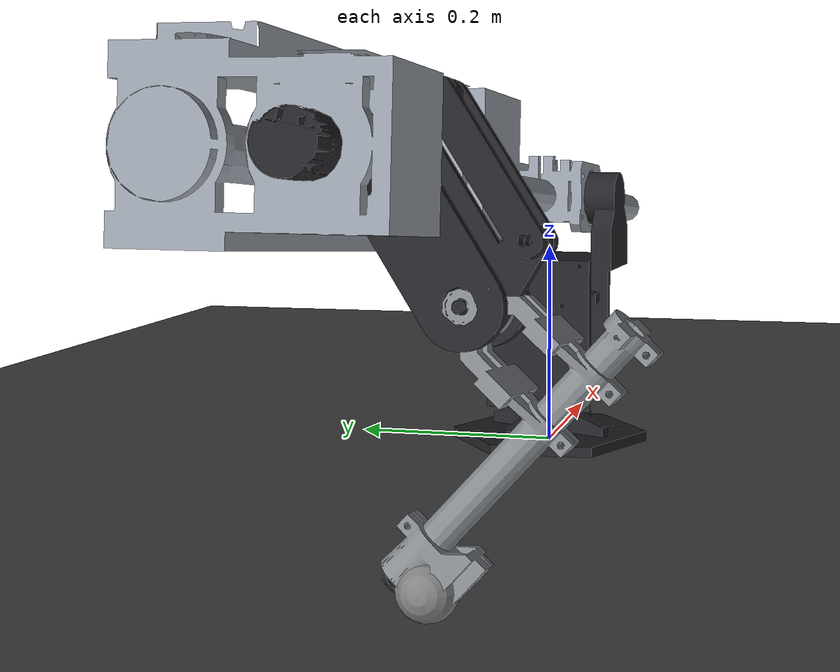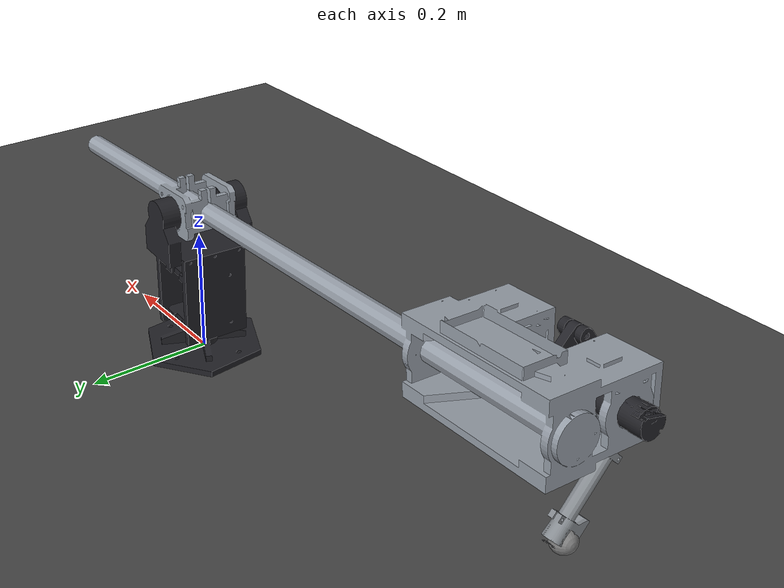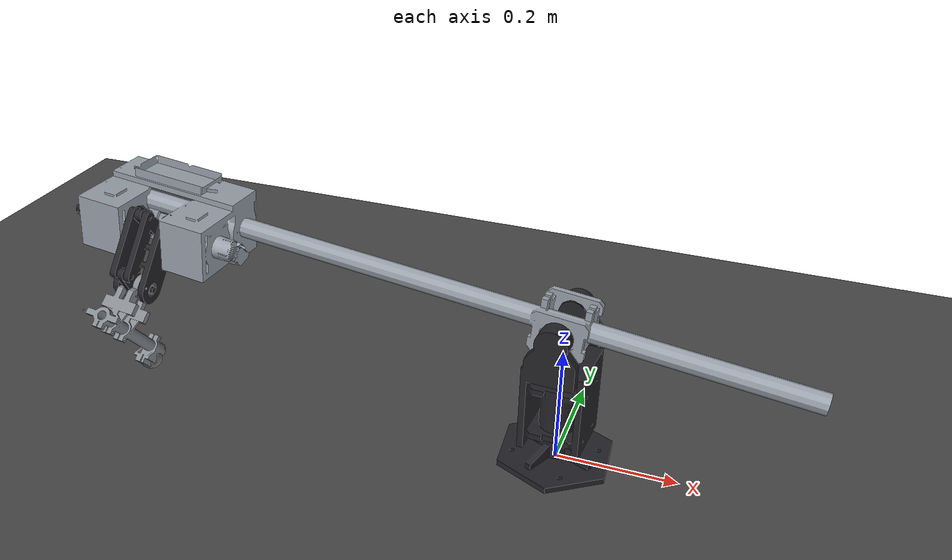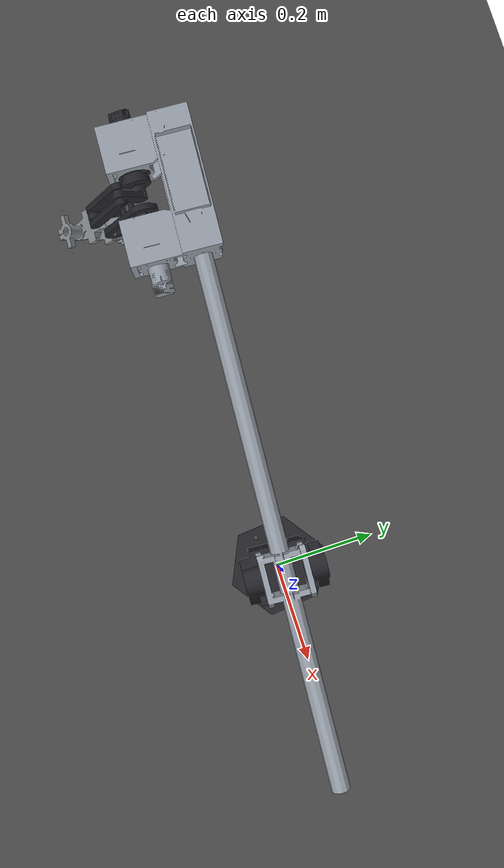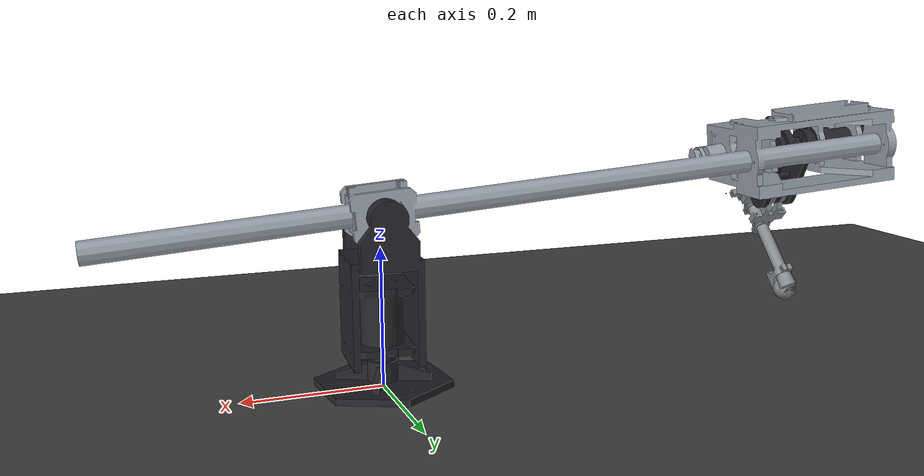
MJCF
<mujoco model="HOPPY-E0-final">
  <compiler angle="radian" autolimits="true" meshdir="meshes"/>
  <option timestep="0.001" gravity="0 0 -9.81" integrator="RK4"
          solver="Newton" iterations="50" tolerance="1e-8"/>
  <default>
    <geom condim="3" friction="0.8 0.005 0.0001"
          solref="0.005 1" solimp="0.98 0.999 0.001 0.5 2"/>
    <joint damping="0.02"/>
  </default>

  <asset>
    <mesh name="base_urdf" file="base_urdf.stl"/>
    <mesh name="link1_urdf" file="link1_urdf.stl"/>
    <mesh name="link2_urdf" file="link2_urdf.stl"/>
    <mesh name="link3_urdf" file="link3_urdf.stl"/>
    <mesh name="link4_urdf" file="link4_urdf.stl"/>

    <!-- Floor texture -->
    <texture name="grid" type="2d" builtin="checker"
             rgb1="0.38 0.38 0.38" rgb2="0.18 0.18 0.18" width="512" height="512"/>
    <material name="floor_mat" texture="grid" texrepeat="5 5" reflectance="0.04"/>
    <!-- Robot materials by link (matching real robot colors from photos) -->
    <material name="base_mat"  rgba="0.14 0.14 0.16 1"/>  <!-- dark anodized -->
    <material name="link1_mat" rgba="0.14 0.14 0.16 1"/>  <!-- dark column -->
    <material name="link2_mat" rgba="0.60 0.63 0.67 1"/>  <!-- silver boom -->
    <material name="link3_mat" rgba="0.14 0.14 0.16 1"/>  <!-- dark hip -->
    <material name="link4_mat" rgba="0.52 0.54 0.56 1"/>  <!-- carbon shank -->
    <material name="foot_mat"  rgba="0.80 0.08 0.08 1"/>  <!-- red foot -->
  </asset>

  <worldbody>
    <light name="sun"  pos="2 -1 4"  dir="-0.4 0.2 -0.9" diffuse="0.85 0.85 0.85" specular="0.4 0.4 0.4"/>
    <light name="fill" pos="-3 3 2"  dir="0.6 -0.5 -0.6" diffuse="0.30 0.30 0.35"/>
    <geom name="floor" type="plane" size="5 5 0.1" material="floor_mat"
          friction="0.8 0.005 0.0001" condim="3"/>
    <geom type="mesh" material="base_mat" mesh="base_urdf"/>
    <body name="Link1" pos="0 0 0.04">
      <inertial pos="1.19035e-06 -7.23296e-08 0.110977" quat="0.999539 -3.72317e-07 -1.22626e-05 -0.0303481" mass="1.05189" diaginertia="0.0015755 0.00119525 0.000930447"/>
      <joint name="joint1" pos="0 0 0" axis="0 0 1" range="-3.14 3.14" actuatorfrcrange="-10 10"/>
      <geom type="mesh" material="link1_mat" mesh="link1_urdf"/>
      <body name="Link2" pos="-0.00227444 -0.037431 0.21" quat="0.705252 0.707058 0.00831865 -0.0511876">
        <inertial pos="-0.513966 0.0016327 -0.00902703" quat="0.500001 0.500001 0.499999 0.499999" mass="1.87654" diaginertia="0.0636508 0.0630427 0.00259304"/>
        <joint name="joint2" pos="0 0 0" axis="0 0 1" range="-0.5 0.5" actuatorfrcrange="-10 10"/>
        <geom type="mesh" material="link2_mat" mesh="link2_urdf"/>
        <body name="Link3" pos="-0.6585 0 0.0425" quat="0.677009 -0.204104 -0.677009 0.204104">
          <inertial pos="0.00864428 -0.0327981 0.0561207" quat="0.511267 0.498647 -0.497438 0.492456" mass="0.332207" diaginertia="0.000345397 0.000299821 7.12146e-05"/>
          <joint name="joint3" pos="0 0 0" axis="0 0 1" range="-0.5 0.9" actuatorfrcrange="-10 10"/>
          <geom type="mesh" material="link3_mat" mesh="link3_urdf"/>
          <body name="Link4" pos="0 -0.1 0.0095" quat="0 -0.288647 -0.957436 0">
            <inertial pos="-0.0162703 -0.0747425 -0.0260399" quat="0.285014 0.647037 -0.285746 0.646884" mass="0.172793" diaginertia="0.000170791 0.000165707 3.2109e-05"/>
            <joint name="joint4" pos="0 0 0" axis="0 0 -1" range="-1.3 0.4" actuatorfrcrange="-10 10"/>
            <geom type="mesh" material="link4_mat" mesh="link4_urdf"/>

            <!-- Foot sphere - REGATÓN rubber bumper per URDF CSV -->
            <!-- Position in Link4 frame: Y=-0.164 (mesh Y_min+foot_r) -->
            <body name="foot_body" pos="0.024 -0.164 -0.028">
              <geom name="foot" type="sphere" size="0.018"
                    material="foot_mat" mass="0.010"
                    condim="1" solref="0.003 1"
                    solimp="0.99 0.9999 0.0005 0.5 2"/>
              <site name="foot_site" size="0.019"/>
            </body>
          </body>
        </body>
      </body>
    </body>
  </worldbody>

  <!-- Actuators: hip=joint3, knee=joint4, yaw=joint1 -->
  <!-- tau_max from get_params.m: hip=3.352Nm, knee=3.589Nm -->
  <actuator>
    <motor name="hip_m"  joint="joint3" gear="1" ctrlrange="-3.352 3.352"/>
    <motor name="knee_m" joint="joint4" gear="1" ctrlrange="-3.589 3.589"/>
    <motor name="yaw_m"  joint="joint1" gear="1" ctrlrange="-15.00 15.00"/>
  </actuator>

  <sensor>
    <jointpos  name="s_yaw"    joint="joint1"/>
    <jointpos  name="s_pitch"  joint="joint2"/>
    <jointpos  name="s_hip"    joint="joint3"/>
    <jointpos  name="s_knee"   joint="joint4"/>
    <jointvel  name="sv_yaw"   joint="joint1"/>
    <jointvel  name="sv_pitch" joint="joint2"/>
    <jointvel  name="sv_hip"   joint="joint3"/>
    <jointvel  name="sv_knee"  joint="joint4"/>
    <framepos  name="foot_pos"   objtype="site" objname="foot_site"/>
    <touch     name="foot_touch" site="foot_site"/>
  </sensor>

  <!-- Default key for static display pose:
       joint1=0 (yaw), joint2=0.084 (boom flat), joint3=0 (hip), joint4=-0.30 (knee) -->
  <keyframe>
    <key name="display" qpos="0 0.084 0 -0.30" ctrl="0 0 0"/>
    <key name="matlab_ic" qpos="0 0.243 1.047 -1.571" ctrl="0 0 0"/>
  </keyframe>
</mujoco>
